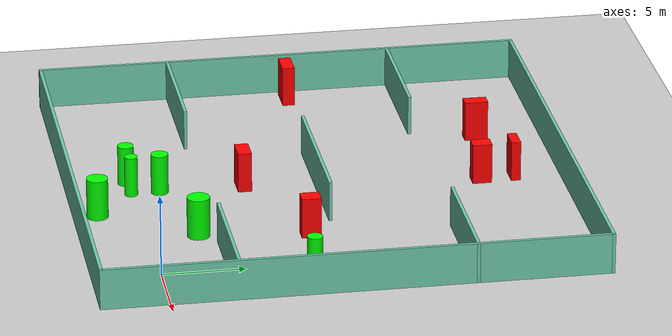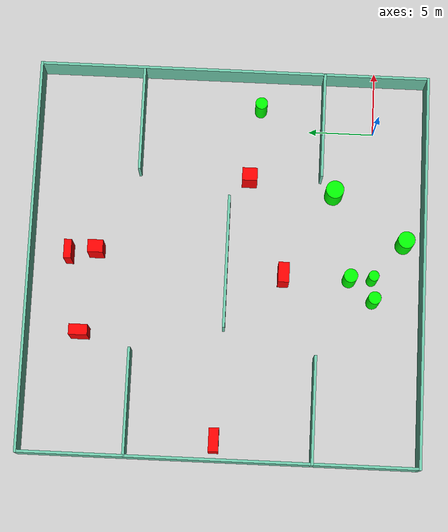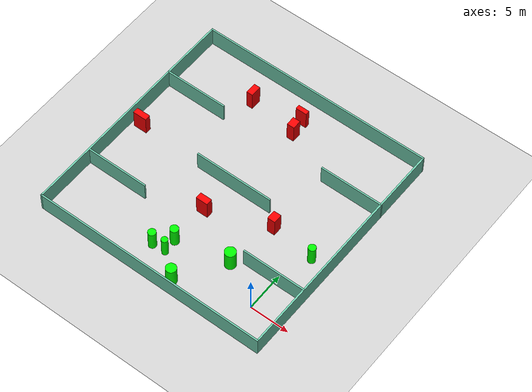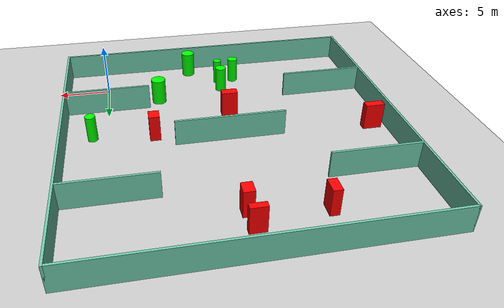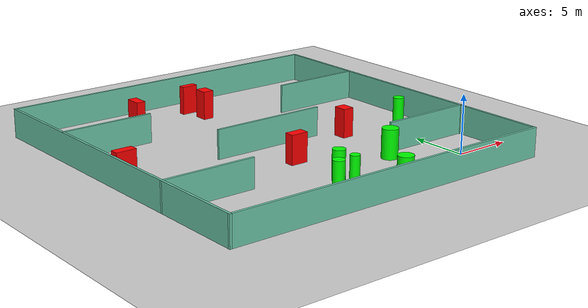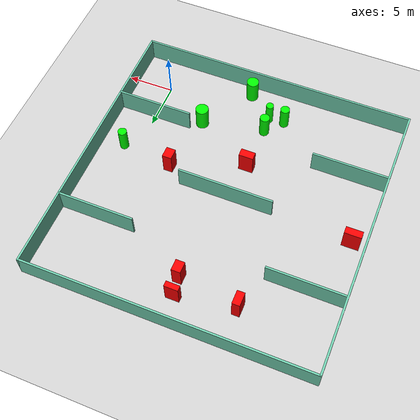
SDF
<sdf version="1.7">
 <world name="default">
  <light name="sun" type="directional">
   <pose>0 0 10 0 -0 0</pose>
   <diffuse>0.8 0.8 0.8 1</diffuse>
   <specular>0.2 0.2 0.2 1</specular>
   <attenuation>
    <range>1000</range>
    <constant>0.9</constant>
    <linear>0.01</linear>
    <quadratic>0.001</quadratic>
   </attenuation>
   <direction>-0.5 0.1 -0.9</direction>
   <spot><inner_angle>0</inner_angle><outer_angle>0</outer_angle><falloff>0</falloff></spot>
  </light>
  <model name="ground_plane">
   <static>1</static>
   <link name="link">
    <collision name="collision">
     <geometry><plane><normal>0 0 1</normal><size>100 100</size></plane></geometry>
     <surface>
      <contact><collide_bitmask>65535</collide_bitmask></contact>
      <friction><ode><mu>100</mu><mu2>50</mu2></ode></friction>
     </surface>
    </collision>
    <visual name="visual">
     <cast_shadows>0</cast_shadows>
     <geometry><plane><normal>0 0 1</normal><size>100 100</size></plane></geometry>
     <material>
      <script><uri>file://media/materials/scripts/gazebo.material</uri><name>Gazebo/Grey</name></script>
     </material>
    </visual>
   </link>
  </model>
  <gravity>0 0 -9.8</gravity>
  <magnetic_field>6e-06 2.3e-05 -4.2e-05</magnetic_field>
  <atmosphere type="adiabatic"/>
  <physics type="ode">
   <max_step_size>0.001</max_step_size>
   <real_time_factor>1</real_time_factor>
   <real_time_update_rate>1000</real_time_update_rate>
  </physics>
  <scene><ambient>0.4 0.4 0.4 1</ambient><background>0.7 0.7 0.7 1</background><shadows>1</shadows></scene>
  <spherical_coordinates>
   <surface_model>EARTH_WGS84</surface_model>
   <latitude_deg>0</latitude_deg>
   <longitude_deg>0</longitude_deg>
   <elevation>0</elevation>
   <heading_deg>0</heading_deg>
  </spherical_coordinates>
  <model name="my_base_walls">
   <link name="Wall_10">
    <collision name="Wall_10_Collision">
     <geometry><box><size>8.2 0.2 2.5</size></box></geometry>
     <pose>0 0 1.25 0 -0 0</pose>
    </collision>
    <visual name="Wall_10_Visual">
     <pose>0 0 1.25 0 -0 0</pose>
     <geometry><box><size>8.2 0.2 2.5</size></box></geometry>
     <material>
      <script><uri>file://media/materials/scripts/gazebo.material</uri><name>Gazebo/Grey</name></script>
      <ambient>0.435294 0.796078 0.67451 1</ambient>
     </material>
     <meta><layer>0</layer></meta>
    </visual>
    <pose>-11 -7 0 0 -0 0</pose>
   </link>
   <link name="Wall_12">
    <collision name="Wall_12_Collision">
     <geometry><box><size>8.2 0.2 2.5</size></box></geometry>
     <pose>0 0 1.25 0 -0 0</pose>
    </collision>
    <visual name="Wall_12_Visual">
     <pose>0 0 1.25 0 -0 0</pose>
     <geometry><box><size>8.2 0.2 2.5</size></box></geometry>
     <material>
      <script><uri>file://media/materials/scripts/gazebo.material</uri><name>Gazebo/Grey</name></script>
      <ambient>0.435294 0.796078 0.67451 1</ambient>
     </material>
     <meta><layer>0</layer></meta>
    </visual>
    <pose>-11 7 0 0 -0 0</pose>
   </link>
   <link name="Wall_14">
    <collision name="Wall_14_Collision">
     <geometry><box><size>8.2 0.2 2.5</size></box></geometry>
     <pose>0 0 1.25 0 -0 0</pose>
    </collision>
    <visual name="Wall_14_Visual">
     <pose>0 0 1.25 0 -0 0</pose>
     <geometry><box><size>8.2 0.2 2.5</size></box></geometry>
     <material>
      <script><uri>file://media/materials/scripts/gazebo.material</uri><name>Gazebo/Grey</name></script>
      <ambient>0.435294 0.796078 0.67451 1</ambient>
     </material>
     <meta><layer>0</layer></meta>
    </visual>
    <pose>11 7 0 0 -0 3.14159</pose>
   </link>
   <link name="Wall_16">
    <collision name="Wall_16_Collision">
     <geometry><box><size>10.2 0.2 2.5</size></box></geometry>
     <pose>0 0 1.25 0 -0 0</pose>
    </collision>
    <visual name="Wall_16_Visual">
     <pose>0 0 1.25 0 -0 0</pose>
     <geometry><box><size>10.2 0.2 2.5</size></box></geometry>
     <material>
      <script><uri>file://media/materials/scripts/gazebo.material</uri><name>Gazebo/Grey</name></script>
      <ambient>0.435294 0.796078 0.67451 1</ambient>
     </material>
     <meta><layer>0</layer></meta>
    </visual>
    <pose>0 0 0 0 -0 3.14159</pose>
   </link>
   <link name="Wall_2">
    <collision name="Wall_2_Collision">
     <geometry><box><size>30.2 0.2 2.5</size></box></geometry>
     <pose>0 0 1.25 0 -0 0</pose>
    </collision>
    <visual name="Wall_2_Visual">
     <pose>0 0 1.25 0 -0 0</pose>
     <geometry><box><size>30.2 0.2 2.5</size></box></geometry>
     <material>
      <script><uri>file://media/materials/scripts/gazebo.material</uri><name>Gazebo/Grey</name></script>
      <ambient>0.435294 0.796078 0.67451 1</ambient>
     </material>
     <meta><layer>0</layer></meta>
    </visual>
    <pose>0 -15 0 0 -0 3.14159</pose>
   </link>
   <link name="Wall_3">
    <collision name="Wall_3_Collision">
     <geometry><box><size>30.2 0.2 2.5</size></box></geometry>
     <pose>0 0 1.25 0 -0 0</pose>
    </collision>
    <visual name="Wall_3_Visual">
     <pose>0 0 1.25 0 -0 0</pose>
     <geometry><box><size>30.2 0.2 2.5</size></box></geometry>
     <material>
      <script><uri>file://media/materials/scripts/gazebo.material</uri><name>Gazebo/Grey</name></script>
      <ambient>0.435294 0.796078 0.67451 1</ambient>
     </material>
     <meta><layer>0</layer></meta>
    </visual>
    <pose>-15 0 0 0 -0 1.5708</pose>
   </link>
   <link name="Wall_4">
    <collision name="Wall_4_Collision">
     <geometry><box><size>30.2 0.2 2.5</size></box></geometry>
     <pose>0 0 1.25 0 -0 0</pose>
    </collision>
    <visual name="Wall_4_Visual">
     <pose>0 0 1.25 0 -0 0</pose>
     <geometry><box><size>30.2 0.2 2.5</size></box></geometry>
     <material>
      <script><uri>file://media/materials/scripts/gazebo.material</uri><name>Gazebo/Grey</name></script>
      <ambient>0.435294 0.796078 0.67451 1</ambient>
     </material>
     <meta><layer>0</layer></meta>
    </visual>
    <pose>0 15 0 0 -0 0</pose>
   </link>
   <link name="Wall_6">
    <collision name="Wall_6_Collision">
     <geometry><box><size>30.2 0.2 2.5</size></box></geometry>
     <pose>0 0 1.25 0 -0 0</pose>
    </collision>
    <visual name="Wall_6_Visual">
     <pose>0 0 1.25 0 -0 0</pose>
     <geometry><box><size>30.2 0.2 2.5</size></box></geometry>
     <material>
      <script><uri>file://media/materials/scripts/gazebo.material</uri><name>Gazebo/Grey</name></script>
      <ambient>0.435294 0.796078 0.67451 1</ambient>
     </material>
     <meta><layer>0</layer></meta>
    </visual>
    <pose>15 0 0 0 -0 1.5708</pose>
   </link>
   <link name="Wall_8">
    <collision name="Wall_8_Collision">
     <geometry><box><size>8.2 0.2 2.5</size></box></geometry>
     <pose>0 0 1.25 0 -0 0</pose>
    </collision>
    <visual name="Wall_8_Visual">
     <pose>0 0 1.25 0 -0 0</pose>
     <geometry><box><size>8.2 0.2 2.5</size></box></geometry>
     <material>
      <script><uri>file://media/materials/scripts/gazebo.material</uri><name>Gazebo/Grey</name></script>
      <ambient>0.435294 0.796078 0.67451 1</ambient>
     </material>
     <meta><layer>0</layer></meta>
    </visual>
    <pose>11 -7 0 0 -0 3.14159</pose>
   </link>
   <static>1</static>
   <pose>-11 11 0 0 -0 0</pose>
  </model>
  <model name="cylinder1">
   <static>1</static>
   <link name="link">
    <inertial>
     <mass>1</mass>
     <inertia><ixx>0.5</ixx><ixy>0</ixy><ixz>0</ixz><iyy>0.5</iyy><iyz>0</iyz><izz>1</izz></inertia>
    </inertial>
    <collision name="collision">
     <geometry><cylinder><radius>0.46749267842621856</radius><length>2.5</length></cylinder></geometry>
    </collision>
    <visual name="visual">
     <geometry><cylinder><radius>0.46749267842621856</radius><length>2.5</length></cylinder></geometry>
     <material>
      <ambient>0 1 0 1</ambient>
      <diffuse>0 1 0 1</diffuse>
      <specular>0.1 0.1 0.1 1</specular>
      <emissive>0 0 0 0</emissive>
     </material>
    </visual>
   </link>
   <pose>1.4816668149253616 8.831351756308633 1.25 0 0 0</pose>
  </model>
  <model name="cylinder2">
   <static>1</static>
   <link name="link">
    <inertial>
     <mass>1</mass>
     <inertia><ixx>0.5</ixx><ixy>0</ixy><ixz>0</ixz><iyy>0.5</iyy><iyz>0</iyz><izz>1</izz></inertia>
    </inertial>
    <collision name="collision">
     <geometry><cylinder><radius>0.6909347195549504</radius><length>2.5</length></cylinder></geometry>
    </collision>
    <visual name="visual">
     <geometry><cylinder><radius>0.6909347195549504</radius><length>2.5</length></cylinder></geometry>
     <material>
      <ambient>0 1 0 1</ambient>
      <diffuse>0 1 0 1</diffuse>
      <specular>0.1 0.1 0.1 1</specular>
      <emissive>0 0 0 0</emissive>
     </material>
    </visual>
   </link>
   <pose>-5.104136114632254 2.9458741506652917 1.25 0 0 0</pose>
  </model>
  <model name="cylinder3">
   <static>1</static>
   <link name="link">
    <inertial>
     <mass>1</mass>
     <inertia><ixx>0.5</ixx><ixy>0</ixy><ixz>0</ixz><iyy>0.5</iyy><iyz>0</iyz><izz>1</izz></inertia>
    </inertial>
    <collision name="collision">
     <geometry><cylinder><radius>0.6514972503794461</radius><length>2.5</length></cylinder></geometry>
    </collision>
    <visual name="visual">
     <geometry><cylinder><radius>0.6514972503794461</radius><length>2.5</length></cylinder></geometry>
     <material>
      <ambient>0 1 0 1</ambient>
      <diffuse>0 1 0 1</diffuse>
      <specular>0.1 0.1 0.1 1</specular>
      <emissive>0 0 0 0</emissive>
     </material>
    </visual>
   </link>
   <pose>-8.796560302319495 -2.610512720373114 1.25 0 0 0</pose>
  </model>
  <model name="cylinder4">
   <static>1</static>
   <link name="link">
    <inertial>
     <mass>1</mass>
     <inertia><ixx>0.5</ixx><ixy>0</ixy><ixz>0</ixz><iyy>0.5</iyy><iyz>0</iyz><izz>1</izz></inertia>
    </inertial>
    <collision name="collision">
     <geometry><cylinder><radius>0.40368472727966015</radius><length>2.5</length></cylinder></geometry>
    </collision>
    <visual name="visual">
     <geometry><cylinder><radius>0.40368472727966015</radius><length>2.5</length></cylinder></geometry>
     <material>
      <ambient>0 1 0 1</ambient>
      <diffuse>0 1 0 1</diffuse>
      <specular>0.1 0.1 0.1 1</specular>
      <emissive>0 0 0 0</emissive>
     </material>
    </visual>
   </link>
   <pose>-11.676945319139778 -0.20381918047253356 1.25 0 0 0</pose>
  </model>
  <model name="cylinder5">
   <static>1</static>
   <link name="link">
    <inertial>
     <mass>1</mass>
     <inertia><ixx>0.5</ixx><ixy>0</ixy><ixz>0</ixz><iyy>0.5</iyy><iyz>0</iyz><izz>1</izz></inertia>
    </inertial>
    <collision name="collision">
     <geometry><cylinder><radius>0.49057676286086793</radius><length>2.5</length></cylinder></geometry>
    </collision>
    <visual name="visual">
     <geometry><cylinder><radius>0.49057676286086793</radius><length>2.5</length></cylinder></geometry>
     <material>
      <ambient>0 1 0 1</ambient>
      <diffuse>0 1 0 1</diffuse>
      <specular>0.1 0.1 0.1 1</specular>
      <emissive>0 0 0 0</emissive>
     </material>
    </visual>
   </link>
   <pose>-13.361785105672066 -0.3089929547063961 1.25 0 0 0</pose>
  </model>
  <model name="cylinder6">
   <static>1</static>
   <link name="link">
    <inertial>
     <mass>1</mass>
     <inertia><ixx>0.5</ixx><ixy>0</ixy><ixz>0</ixz><iyy>0.5</iyy><iyz>0</iyz><izz>1</izz></inertia>
    </inertial>
    <collision name="collision">
     <geometry><cylinder><radius>0.5286851532861282</radius><length>2.5</length></cylinder></geometry>
    </collision>
    <visual name="visual">
     <geometry><cylinder><radius>0.5286851532861282</radius><length>2.5</length></cylinder></geometry>
     <material>
      <ambient>0 1 0 1</ambient>
      <diffuse>0 1 0 1</diffuse>
      <specular>0.1 0.1 0.1 1</specular>
      <emissive>0 0 0 0</emissive>
     </material>
    </visual>
   </link>
   <pose>-11.738747001728566 1.5381760358725654 1.25 0 0 0</pose>
  </model>
  <model name="box1">
   <static>1</static>
   <link name="link">
    <inertial>
     <mass>1</mass>
     <inertia><ixx>0.083</ixx><ixy>0</ixy><ixz>0</ixz><iyy>0.083</iyy><iyz>0</iyz><izz>0.083</izz></inertia>
    </inertial>
    <collision name="collision">
     <geometry><box><size>0.8099086460307616 1.42410804247224 2.5</size></box></geometry>
    </collision>
    <visual name="visual">
     <geometry><box><size>0.8099086460307616 1.42410804247224 2.5</size></box></geometry>
     <material>
      <ambient>1 0 0 1</ambient>
      <diffuse>1 0 0 1</diffuse>
      <specular>0.1 0.1 0.1 1</specular>
      <emissive>0 0 0 0</emissive>
     </material>
    </visual>
    <sensor name="my_contact" type="contact">
     <contact><collision>box_collision</collision><topic>__default_topic__</topic></contact>
    </sensor>
   </link>
   <pose>-16.748768546873023 21.915495105257655 1.25 0 0 0</pose>
  </model>
  <model name="box2">
   <static>1</static>
   <link name="link">
    <inertial>
     <mass>1</mass>
     <inertia><ixx>0.083</ixx><ixy>0</ixy><ixz>0</ixz><iyy>0.083</iyy><iyz>0</iyz><izz>0.083</izz></inertia>
    </inertial>
    <collision name="collision">
     <geometry><box><size>0.9852769565562829 1.1659602947890149 2.5</size></box></geometry>
    </collision>
    <visual name="visual">
     <geometry><box><size>0.9852769565562829 1.1659602947890149 2.5</size></box></geometry>
     <material>
      <ambient>1 0 0 1</ambient>
      <diffuse>1 0 0 1</diffuse>
      <specular>0.1 0.1 0.1 1</specular>
      <emissive>0 0 0 0</emissive>
     </material>
    </visual>
    <sensor name="my_contact" type="contact">
     <contact><collision>box_collision</collision><topic>__default_topic__</topic></contact>
    </sensor>
   </link>
   <pose>-4.17754171321079 9.502251658321729 1.25 0 0 0</pose>
  </model>
  <model name="box3">
   <static>1</static>
   <link name="link">
    <inertial>
     <mass>1</mass>
     <inertia><ixx>0.083</ixx><ixy>0</ixy><ixz>0</ixz><iyy>0.083</iyy><iyz>0</iyz><izz>0.083</izz></inertia>
    </inertial>
    <collision name="collision">
     <geometry><box><size>0.9590727314362996 1.1742640840537133 2.5</size></box></geometry>
    </collision>
    <visual name="visual">
     <geometry><box><size>0.9590727314362996 1.1742640840537133 2.5</size></box></geometry>
     <material>
      <ambient>1 0 0 1</ambient>
      <diffuse>1 0 0 1</diffuse>
      <specular>0.1 0.1 0.1 1</specular>
      <emissive>0 0 0 0</emissive>
     </material>
    </visual>
    <sensor name="my_contact" type="contact">
     <contact><collision>box_collision</collision><topic>__default_topic__</topic></contact>
    </sensor>
   </link>
   <pose>-10.300343209530876 21.000802057319923 1.25 0 0 0</pose>
  </model>
  <model name="box4">
   <static>1</static>
   <link name="link">
    <inertial>
     <mass>1</mass>
     <inertia><ixx>0.083</ixx><ixy>0</ixy><ixz>0</ixz><iyy>0.083</iyy><iyz>0</iyz><izz>0.083</izz></inertia>
    </inertial>
    <collision name="collision">
     <geometry><box><size>1.7721876537177008 0.7548469776791239 2.5</size></box></geometry>
    </collision>
    <visual name="visual">
     <geometry><box><size>1.7721876537177008 0.7548469776791239 2.5</size></box></geometry>
     <material>
      <ambient>1 0 0 1</ambient>
      <diffuse>1 0 0 1</diffuse>
      <specular>0.1 0.1 0.1 1</specular>
      <emissive>0 0 0 0</emissive>
     </material>
    </visual>
    <sensor name="my_contact" type="contact">
     <contact><collision>box_collision</collision><topic>__default_topic__</topic></contact>
    </sensor>
   </link>
   <pose>-24.53187453035969 11.35776834285011 1.25 0 0 0</pose>
  </model>
  <model name="box5">
   <static>1</static>
   <link name="link">
    <inertial>
     <mass>1</mass>
     <inertia><ixx>0.083</ixx><ixy>0</ixy><ixz>0</ixz><iyy>0.083</iyy><iyz>0</iyz><izz>0.083</izz></inertia>
    </inertial>
    <collision name="collision">
     <geometry><box><size>1.4447574993217285 0.5720017673669234 2.5</size></box></geometry>
    </collision>
    <visual name="visual">
     <geometry><box><size>1.4447574993217285 0.5720017673669234 2.5</size></box></geometry>
     <material>
      <ambient>1 0 0 1</ambient>
      <diffuse>1 0 0 1</diffuse>
      <specular>0.1 0.1 0.1 1</specular>
      <emissive>0 0 0 0</emissive>
     </material>
    </visual>
    <sensor name="my_contact" type="contact">
     <contact><collision>box_collision</collision><topic>__default_topic__</topic></contact>
    </sensor>
   </link>
   <pose>-10.608022403078248 23.08461314860663 1.25 0 0 0</pose>
  </model>
  <model name="box6">
   <static>1</static>
   <link name="link">
    <inertial>
     <mass>1</mass>
     <inertia><ixx>0.083</ixx><ixy>0</ixy><ixz>0</ixz><iyy>0.083</iyy><iyz>0</iyz><izz>0.083</izz></inertia>
    </inertial>
    <collision name="collision">
     <geometry><box><size>1.532569200384781 0.8402333685237473 2.5</size></box></geometry>
    </collision>
    <visual name="visual">
     <geometry><box><size>1.532569200384781 0.8402333685237473 2.5</size></box></geometry>
     <material>
      <ambient>1 0 0 1</ambient>
      <diffuse>1 0 0 1</diffuse>
      <specular>0.1 0.1 0.1 1</specular>
      <emissive>0 0 0 0</emissive>
     </material>
    </visual>
    <sensor name="my_contact" type="contact">
     <contact><collision>box_collision</collision><topic>__default_topic__</topic></contact>
    </sensor>
   </link>
   <pose>-11.68620328075378 6.620098048341127 1.25 0 0 0</pose>
  </model>
 </world>
</sdf>
